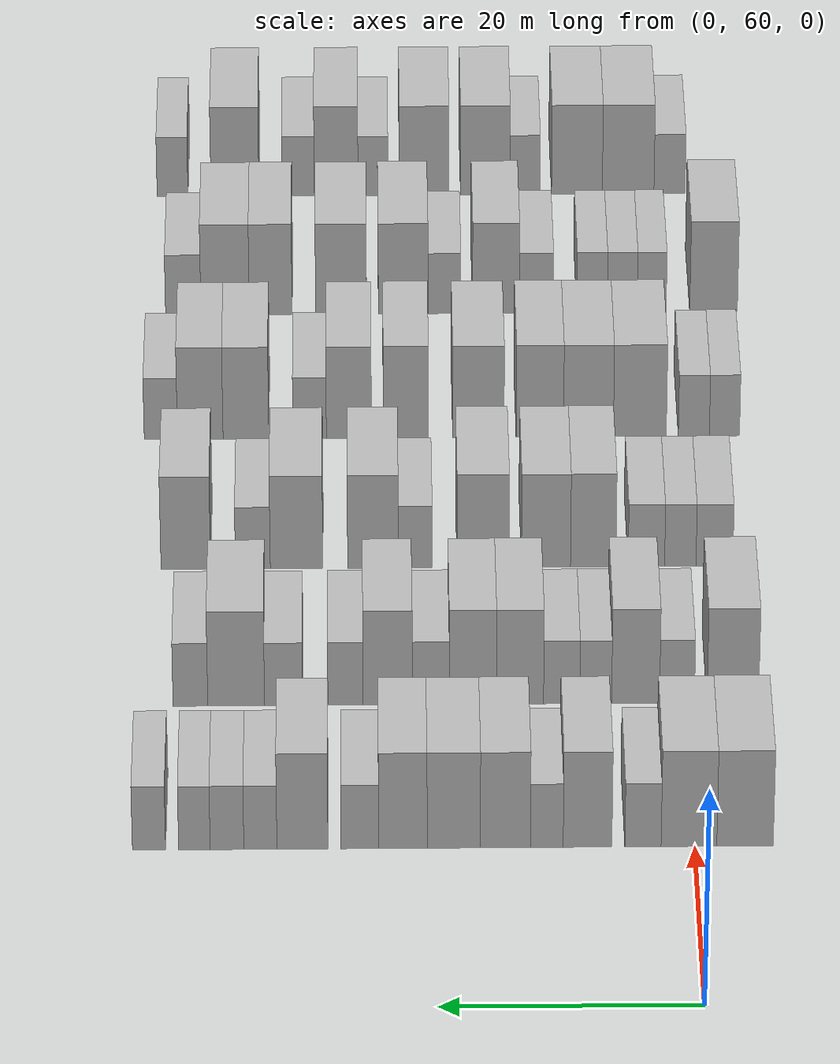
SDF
<sdf version="1.6">
 <world name="default">
  <model name="building_99">
   <static>1</static>
   <pose>25.0000 56.1814 0 0.000000 0.000000 0.000000</pose>
   <link name="link">
    <pose>0 0 4.50 0 0 0</pose>
    <collision name="collision"><geometry><box><size>10.0000 4.3345 9.0000</size></box></geometry></collision>
    <visual name="visual">
     <cast_shadows>0</cast_shadows>
     <geometry><box><size>10.0000 4.3345 9.0000</size></box></geometry>
     <material>
      <script>
       <uri>model://HANNAS_wall/materials/scripts</uri>
       <uri>model://HANNAS_wall/materials/textures</uri>
       <name>vrc/HANNAS_wall</name>
      </script>
     </material>
    </visual>
   </link>
  </model>
  <model name="building_100">
   <static>1</static>
   <pose>25.0000 60.4902 0 0.000000 0.000000 0.000000</pose>
   <link name="link">
    <pose>0 0 4.50 0 0 0</pose>
    <collision name="collision"><geometry><box><size>10.0000 4.2832 9.0000</size></box></geometry></collision>
    <visual name="visual">
     <cast_shadows>0</cast_shadows>
     <geometry><box><size>10.0000 4.2832 9.0000</size></box></geometry>
     <material>
      <script>
       <uri>model://HANNAS_wall/materials/scripts</uri>
       <uri>model://HANNAS_wall/materials/textures</uri>
       <name>vrc/HANNAS_wall</name>
      </script>
     </material>
    </visual>
   </link>
  </model>
  <model name="building_101">
   <static>1</static>
   <pose>25.0000 64.0233 0 0.000000 0.000000 0.000000</pose>
   <link name="link">
    <pose>0 0 3.00 0 0 0</pose>
    <collision name="collision"><geometry><box><size>10.0000 2.7829 6.0000</size></box></geometry></collision>
    <visual name="visual">
     <cast_shadows>0</cast_shadows>
     <geometry><box><size>10.0000 2.7829 6.0000</size></box></geometry>
     <material>
      <script>
       <uri>model://HANNAS_wall/materials/scripts</uri>
       <uri>model://HANNAS_wall/materials/textures</uri>
       <name>vrc/HANNAS_wall</name>
      </script>
     </material>
    </visual>
   </link>
  </model>
  <model name="building_102">
   <static>1</static>
   <pose>25.0000 68.2854 0 0.000000 0.000000 0.000000</pose>
   <link name="link">
    <pose>0 0 4.50 0 0 0</pose>
    <collision name="collision"><geometry><box><size>10.0000 3.7414 9.0000</size></box></geometry></collision>
    <visual name="visual">
     <cast_shadows>0</cast_shadows>
     <geometry><box><size>10.0000 3.7414 9.0000</size></box></geometry>
     <material>
      <script>
       <uri>model://HANNAS_wall/materials/scripts</uri>
       <uri>model://HANNAS_wall/materials/textures</uri>
       <name>vrc/HANNAS_wall</name>
      </script>
     </material>
    </visual>
   </link>
  </model>
  <model name="building_103">
   <static>1</static>
   <pose>25.0000 71.4149 0 0.000000 0.000000 0.000000</pose>
   <link name="link">
    <pose>0 0 3.00 0 0 0</pose>
    <collision name="collision"><geometry><box><size>10.0000 2.5176 6.0000</size></box></geometry></collision>
    <visual name="visual">
     <cast_shadows>0</cast_shadows>
     <geometry><box><size>10.0000 2.5176 6.0000</size></box></geometry>
     <material>
      <script>
       <uri>model://HANNAS_wall/materials/scripts</uri>
       <uri>model://HANNAS_wall/materials/textures</uri>
       <name>vrc/HANNAS_wall</name>
      </script>
     </material>
    </visual>
   </link>
  </model>
  <model name="building_104">
   <static>1</static>
   <pose>25.0000 74.5953 0 0.000000 0.000000 0.000000</pose>
   <link name="link">
    <pose>0 0 4.50 0 0 0</pose>
    <collision name="collision"><geometry><box><size>10.0000 3.8433 9.0000</size></box></geometry></collision>
    <visual name="visual">
     <cast_shadows>0</cast_shadows>
     <geometry><box><size>10.0000 3.8433 9.0000</size></box></geometry>
     <material>
      <script>
       <uri>model://HANNAS_wall/materials/scripts</uri>
       <uri>model://HANNAS_wall/materials/textures</uri>
       <name>vrc/HANNAS_wall</name>
      </script>
     </material>
    </visual>
   </link>
  </model>
  <model name="building_105">
   <static>1</static>
   <pose>25.0000 78.5623 0 0.000000 0.000000 0.000000</pose>
   <link name="link">
    <pose>0 0 4.50 0 0 0</pose>
    <collision name="collision"><geometry><box><size>10.0000 4.0907 9.0000</size></box></geometry></collision>
    <visual name="visual">
     <cast_shadows>0</cast_shadows>
     <geometry><box><size>10.0000 4.0907 9.0000</size></box></geometry>
     <material>
      <script>
       <uri>model://HANNAS_wall/materials/scripts</uri>
       <uri>model://HANNAS_wall/materials/textures</uri>
       <name>vrc/HANNAS_wall</name>
      </script>
     </material>
    </visual>
   </link>
  </model>
  <model name="building_106">
   <static>1</static>
   <pose>25.0000 82.4672 0 0.000000 0.000000 0.000000</pose>
   <link name="link">
    <pose>0 0 4.50 0 0 0</pose>
    <collision name="collision"><geometry><box><size>10.0000 3.7191 9.0000</size></box></geometry></collision>
    <visual name="visual">
     <cast_shadows>0</cast_shadows>
     <geometry><box><size>10.0000 3.7191 9.0000</size></box></geometry>
     <material>
      <script>
       <uri>model://HANNAS_wall/materials/scripts</uri>
       <uri>model://HANNAS_wall/materials/textures</uri>
       <name>vrc/HANNAS_wall</name>
      </script>
     </material>
    </visual>
   </link>
  </model>
  <model name="building_107">
   <static>1</static>
   <pose>25.0000 85.7744 0 0.000000 0.000000 0.000000</pose>
   <link name="link">
    <pose>0 0 3.00 0 0 0</pose>
    <collision name="collision"><geometry><box><size>10.0000 2.8953 6.0000</size></box></geometry></collision>
    <visual name="visual">
     <cast_shadows>0</cast_shadows>
     <geometry><box><size>10.0000 2.8953 6.0000</size></box></geometry>
     <material>
      <script>
       <uri>model://HANNAS_wall/materials/scripts</uri>
       <uri>model://HANNAS_wall/materials/textures</uri>
       <name>vrc/HANNAS_wall</name>
      </script>
     </material>
    </visual>
   </link>
  </model>
  <model name="building_108">
   <static>1</static>
   <pose>25.0000 90.1832 0 0.000000 0.000000 0.000000</pose>
   <link name="link">
    <pose>0 0 4.50 0 0 0</pose>
    <collision name="collision"><geometry><box><size>10.0000 3.9223 9.0000</size></box></geometry></collision>
    <visual name="visual">
     <cast_shadows>0</cast_shadows>
     <geometry><box><size>10.0000 3.9223 9.0000</size></box></geometry>
     <material>
      <script>
       <uri>model://HANNAS_wall/materials/scripts</uri>
       <uri>model://HANNAS_wall/materials/textures</uri>
       <name>vrc/HANNAS_wall</name>
      </script>
     </material>
    </visual>
   </link>
  </model>
  <model name="building_109">
   <static>1</static>
   <pose>25.0000 93.4155 0 0.000000 0.000000 0.000000</pose>
   <link name="link">
    <pose>0 0 3.00 0 0 0</pose>
    <collision name="collision"><geometry><box><size>10.0000 2.5422 6.0000</size></box></geometry></collision>
    <visual name="visual">
     <cast_shadows>0</cast_shadows>
     <geometry><box><size>10.0000 2.5422 6.0000</size></box></geometry>
     <material>
      <script>
       <uri>model://HANNAS_wall/materials/scripts</uri>
       <uri>model://HANNAS_wall/materials/textures</uri>
       <name>vrc/HANNAS_wall</name>
      </script>
     </material>
    </visual>
   </link>
  </model>
  <model name="building_110">
   <static>1</static>
   <pose>25.0000 95.9791 0 0.000000 0.000000 0.000000</pose>
   <link name="link">
    <pose>0 0 3.00 0 0 0</pose>
    <collision name="collision"><geometry><box><size>10.0000 2.5851 6.0000</size></box></geometry></collision>
    <visual name="visual">
     <cast_shadows>0</cast_shadows>
     <geometry><box><size>10.0000 2.5851 6.0000</size></box></geometry>
     <material>
      <script>
       <uri>model://HANNAS_wall/materials/scripts</uri>
       <uri>model://HANNAS_wall/materials/textures</uri>
       <name>vrc/HANNAS_wall</name>
      </script>
     </material>
    </visual>
   </link>
  </model>
  <model name="building_111">
   <static>1</static>
   <pose>25.0000 98.4808 0 0.000000 0.000000 0.000000</pose>
   <link name="link">
    <pose>0 0 3.00 0 0 0</pose>
    <collision name="collision"><geometry><box><size>10.0000 2.4184 6.0000</size></box></geometry></collision>
    <visual name="visual">
     <cast_shadows>0</cast_shadows>
     <geometry><box><size>10.0000 2.4184 6.0000</size></box></geometry>
     <material>
      <script>
       <uri>model://HANNAS_wall/materials/scripts</uri>
       <uri>model://HANNAS_wall/materials/textures</uri>
       <name>vrc/HANNAS_wall</name>
      </script>
     </material>
    </visual>
   </link>
  </model>
  <model name="building_112">
   <static>1</static>
   <pose>25.0000 101.9654 0 0.000000 0.000000 0.000000</pose>
   <link name="link">
    <pose>0 0 3.00 0 0 0</pose>
    <collision name="collision"><geometry><box><size>10.0000 2.5508 6.0000</size></box></geometry></collision>
    <visual name="visual">
     <cast_shadows>0</cast_shadows>
     <geometry><box><size>10.0000 2.5508 6.0000</size></box></geometry>
     <material>
      <script>
       <uri>model://HANNAS_wall/materials/scripts</uri>
       <uri>model://HANNAS_wall/materials/textures</uri>
       <name>vrc/HANNAS_wall</name>
      </script>
     </material>
    </visual>
   </link>
  </model>
  <model name="building_269">
   <static>1</static>
   <pose>44.0000 56.3316 0 0.000000 0.000000 0.000000</pose>
   <link name="link">
    <pose>0 0 4.50 0 0 0</pose>
    <collision name="collision"><geometry><box><size>10.0000 4.0592 9.0000</size></box></geometry></collision>
    <visual name="visual">
     <cast_shadows>0</cast_shadows>
     <geometry><box><size>10.0000 4.0592 9.0000</size></box></geometry>
     <material>
      <script>
       <uri>model://HANNAS_wall/materials/scripts</uri>
       <uri>model://HANNAS_wall/materials/textures</uri>
       <name>vrc/HANNAS_wall</name>
      </script>
     </material>
    </visual>
   </link>
  </model>
  <model name="building_270">
   <static>1</static>
   <pose>44.0000 60.7366 0 0.000000 0.000000 0.000000</pose>
   <link name="link">
    <pose>0 0 3.00 0 0 0</pose>
    <collision name="collision"><geometry><box><size>10.0000 2.7509 6.0000</size></box></geometry></collision>
    <visual name="visual">
     <cast_shadows>0</cast_shadows>
     <geometry><box><size>10.0000 2.7509 6.0000</size></box></geometry>
     <material>
      <script>
       <uri>model://HANNAS_wall/materials/scripts</uri>
       <uri>model://HANNAS_wall/materials/textures</uri>
       <name>vrc/HANNAS_wall</name>
      </script>
     </material>
    </visual>
   </link>
  </model>
  <model name="building_271">
   <static>1</static>
   <pose>44.0000 64.0002 0 0.000000 0.000000 0.000000</pose>
   <link name="link">
    <pose>0 0 4.50 0 0 0</pose>
    <collision name="collision"><geometry><box><size>10.0000 3.7762 9.0000</size></box></geometry></collision>
    <visual name="visual">
     <cast_shadows>0</cast_shadows>
     <geometry><box><size>10.0000 3.7762 9.0000</size></box></geometry>
     <material>
      <script>
       <uri>model://HANNAS_wall/materials/scripts</uri>
       <uri>model://HANNAS_wall/materials/textures</uri>
       <name>vrc/HANNAS_wall</name>
      </script>
     </material>
    </visual>
   </link>
  </model>
  <model name="building_272">
   <static>1</static>
   <pose>44.0000 67.1440 0 0.000000 0.000000 0.000000</pose>
   <link name="link">
    <pose>0 0 3.00 0 0 0</pose>
    <collision name="collision"><geometry><box><size>10.0000 2.5114 6.0000</size></box></geometry></collision>
    <visual name="visual">
     <cast_shadows>0</cast_shadows>
     <geometry><box><size>10.0000 2.5114 6.0000</size></box></geometry>
     <material>
      <script>
       <uri>model://HANNAS_wall/materials/scripts</uri>
       <uri>model://HANNAS_wall/materials/textures</uri>
       <name>vrc/HANNAS_wall</name>
      </script>
     </material>
    </visual>
   </link>
  </model>
  <model name="building_273">
   <static>1</static>
   <pose>44.0000 69.8264 0 0.000000 0.000000 0.000000</pose>
   <link name="link">
    <pose>0 0 3.00 0 0 0</pose>
    <collision name="collision"><geometry><box><size>10.0000 2.8534 6.0000</size></box></geometry></collision>
    <visual name="visual">
     <cast_shadows>0</cast_shadows>
     <geometry><box><size>10.0000 2.8534 6.0000</size></box></geometry>
     <material>
      <script>
       <uri>model://HANNAS_wall/materials/scripts</uri>
       <uri>model://HANNAS_wall/materials/textures</uri>
       <name>vrc/HANNAS_wall</name>
      </script>
     </material>
    </visual>
   </link>
  </model>
  <model name="building_274">
   <static>1</static>
   <pose>44.0000 73.1117 0 0.000000 0.000000 0.000000</pose>
   <link name="link">
    <pose>0 0 4.50 0 0 0</pose>
    <collision name="collision"><geometry><box><size>10.0000 3.7173 9.0000</size></box></geometry></collision>
    <visual name="visual">
     <cast_shadows>0</cast_shadows>
     <geometry><box><size>10.0000 3.7173 9.0000</size></box></geometry>
     <material>
      <script>
       <uri>model://HANNAS_wall/materials/scripts</uri>
       <uri>model://HANNAS_wall/materials/textures</uri>
       <name>vrc/HANNAS_wall</name>
      </script>
     </material>
    </visual>
   </link>
  </model>
  <model name="building_275">
   <static>1</static>
   <pose>44.0000 76.8244 0 0.000000 0.000000 0.000000</pose>
   <link name="link">
    <pose>0 0 4.50 0 0 0</pose>
    <collision name="collision"><geometry><box><size>10.0000 3.7081 9.0000</size></box></geometry></collision>
    <visual name="visual">
     <cast_shadows>0</cast_shadows>
     <geometry><box><size>10.0000 3.7081 9.0000</size></box></geometry>
     <material>
      <script>
       <uri>model://HANNAS_wall/materials/scripts</uri>
       <uri>model://HANNAS_wall/materials/textures</uri>
       <name>vrc/HANNAS_wall</name>
      </script>
     </material>
    </visual>
   </link>
  </model>
  <model name="building_276">
   <static>1</static>
   <pose>44.0000 80.1343 0 0.000000 0.000000 0.000000</pose>
   <link name="link">
    <pose>0 0 3.00 0 0 0</pose>
    <collision name="collision"><geometry><box><size>10.0000 2.9115 6.0000</size></box></geometry></collision>
    <visual name="visual">
     <cast_shadows>0</cast_shadows>
     <geometry><box><size>10.0000 2.9115 6.0000</size></box></geometry>
     <material>
      <script>
       <uri>model://HANNAS_wall/materials/scripts</uri>
       <uri>model://HANNAS_wall/materials/textures</uri>
       <name>vrc/HANNAS_wall</name>
      </script>
     </material>
    </visual>
   </link>
  </model>
  <model name="building_277">
   <static>1</static>
   <pose>44.0000 83.5265 0 0.000000 0.000000 0.000000</pose>
   <link name="link">
    <pose>0 0 4.50 0 0 0</pose>
    <collision name="collision"><geometry><box><size>10.0000 3.8730 9.0000</size></box></geometry></collision>
    <visual name="visual">
     <cast_shadows>0</cast_shadows>
     <geometry><box><size>10.0000 3.8730 9.0000</size></box></geometry>
     <material>
      <script>
       <uri>model://HANNAS_wall/materials/scripts</uri>
       <uri>model://HANNAS_wall/materials/textures</uri>
       <name>vrc/HANNAS_wall</name>
      </script>
     </material>
    </visual>
   </link>
  </model>
  <model name="building_278">
   <static>1</static>
   <pose>44.0000 86.8495 0 0.000000 0.000000 0.000000</pose>
   <link name="link">
    <pose>0 0 3.00 0 0 0</pose>
    <collision name="collision"><geometry><box><size>10.0000 2.7729 6.0000</size></box></geometry></collision>
    <visual name="visual">
     <cast_shadows>0</cast_shadows>
     <geometry><box><size>10.0000 2.7729 6.0000</size></box></geometry>
     <material>
      <script>
       <uri>model://HANNAS_wall/materials/scripts</uri>
       <uri>model://HANNAS_wall/materials/textures</uri>
       <name>vrc/HANNAS_wall</name>
      </script>
     </material>
    </visual>
   </link>
  </model>
  <model name="building_279">
   <static>1</static>
   <pose>44.0000 91.7321 0 0.000000 0.000000 0.000000</pose>
   <link name="link">
    <pose>0 0 3.00 0 0 0</pose>
    <collision name="collision"><geometry><box><size>10.0000 2.9924 6.0000</size></box></geometry></collision>
    <visual name="visual">
     <cast_shadows>0</cast_shadows>
     <geometry><box><size>10.0000 2.9924 6.0000</size></box></geometry>
     <material>
      <script>
       <uri>model://HANNAS_wall/materials/scripts</uri>
       <uri>model://HANNAS_wall/materials/textures</uri>
       <name>vrc/HANNAS_wall</name>
      </script>
     </material>
    </visual>
   </link>
  </model>
  <model name="building_280">
   <static>1</static>
   <pose>44.0000 95.4655 0 0.000000 0.000000 0.000000</pose>
   <link name="link">
    <pose>0 0 4.50 0 0 0</pose>
    <collision name="collision"><geometry><box><size>10.0000 4.4745 9.0000</size></box></geometry></collision>
    <visual name="visual">
     <cast_shadows>0</cast_shadows>
     <geometry><box><size>10.0000 4.4745 9.0000</size></box></geometry>
     <material>
      <script>
       <uri>model://HANNAS_wall/materials/scripts</uri>
       <uri>model://HANNAS_wall/materials/textures</uri>
       <name>vrc/HANNAS_wall</name>
      </script>
     </material>
    </visual>
   </link>
  </model>
  <model name="building_281">
   <static>1</static>
   <pose>44.0000 99.0698 0 0.000000 0.000000 0.000000</pose>
   <link name="link">
    <pose>0 0 3.00 0 0 0</pose>
    <collision name="collision"><geometry><box><size>10.0000 2.7340 6.0000</size></box></geometry></collision>
    <visual name="visual">
     <cast_shadows>0</cast_shadows>
     <geometry><box><size>10.0000 2.7340 6.0000</size></box></geometry>
     <material>
      <script>
       <uri>model://HANNAS_wall/materials/scripts</uri>
       <uri>model://HANNAS_wall/materials/textures</uri>
       <name>vrc/HANNAS_wall</name>
      </script>
     </material>
    </visual>
   </link>
  </model>
  <model name="building_445">
   <static>1</static>
   <pose>63.0000 57.0361 0 0.000000 0.000000 0.000000</pose>
   <link name="link">
    <pose>0 0 3.00 0 0 0</pose>
    <collision name="collision"><geometry><box><size>10.0000 2.9749 6.0000</size></box></geometry></collision>
    <visual name="visual">
     <cast_shadows>0</cast_shadows>
     <geometry><box><size>10.0000 2.9749 6.0000</size></box></geometry>
     <material>
      <script>
       <uri>model://HANNAS_wall/materials/scripts</uri>
       <uri>model://HANNAS_wall/materials/textures</uri>
       <name>vrc/HANNAS_wall</name>
      </script>
     </material>
    </visual>
   </link>
  </model>
  <model name="building_446">
   <static>1</static>
   <pose>63.0000 59.7923 0 0.000000 0.000000 0.000000</pose>
   <link name="link">
    <pose>0 0 3.00 0 0 0</pose>
    <collision name="collision"><geometry><box><size>10.0000 2.5376 6.0000</size></box></geometry></collision>
    <visual name="visual">
     <cast_shadows>0</cast_shadows>
     <geometry><box><size>10.0000 2.5376 6.0000</size></box></geometry>
     <material>
      <script>
       <uri>model://HANNAS_wall/materials/scripts</uri>
       <uri>model://HANNAS_wall/materials/textures</uri>
       <name>vrc/HANNAS_wall</name>
      </script>
     </material>
    </visual>
   </link>
  </model>
  <model name="building_447">
   <static>1</static>
   <pose>63.0000 62.5321 0 0.000000 0.000000 0.000000</pose>
   <link name="link">
    <pose>0 0 3.00 0 0 0</pose>
    <collision name="collision"><geometry><box><size>10.0000 2.9419 6.0000</size></box></geometry></collision>
    <visual name="visual">
     <cast_shadows>0</cast_shadows>
     <geometry><box><size>10.0000 2.9419 6.0000</size></box></geometry>
     <material>
      <script>
       <uri>model://HANNAS_wall/materials/scripts</uri>
       <uri>model://HANNAS_wall/materials/textures</uri>
       <name>vrc/HANNAS_wall</name>
      </script>
     </material>
    </visual>
   </link>
  </model>
  <model name="building_448">
   <static>1</static>
   <pose>63.0000 66.8336 0 0.000000 0.000000 0.000000</pose>
   <link name="link">
    <pose>0 0 4.50 0 0 0</pose>
    <collision name="collision"><geometry><box><size>10.0000 3.6611 9.0000</size></box></geometry></collision>
    <visual name="visual">
     <cast_shadows>0</cast_shadows>
     <geometry><box><size>10.0000 3.6611 9.0000</size></box></geometry>
     <material>
      <script>
       <uri>model://HANNAS_wall/materials/scripts</uri>
       <uri>model://HANNAS_wall/materials/textures</uri>
       <name>vrc/HANNAS_wall</name>
      </script>
     </material>
    </visual>
   </link>
  </model>
  <model name="building_449">
   <static>1</static>
   <pose>63.0000 70.6448 0 0.000000 0.000000 0.000000</pose>
   <link name="link">
    <pose>0 0 4.50 0 0 0</pose>
    <collision name="collision"><geometry><box><size>10.0000 3.9614 9.0000</size></box></geometry></collision>
    <visual name="visual">
     <cast_shadows>0</cast_shadows>
     <geometry><box><size>10.0000 3.9614 9.0000</size></box></geometry>
     <material>
      <script>
       <uri>model://HANNAS_wall/materials/scripts</uri>
       <uri>model://HANNAS_wall/materials/textures</uri>
       <name>vrc/HANNAS_wall</name>
      </script>
     </material>
    </visual>
   </link>
  </model>
  <model name="building_450">
   <static>1</static>
   <pose>63.0000 75.7273 0 0.000000 0.000000 0.000000</pose>
   <link name="link">
    <pose>0 0 4.50 0 0 0</pose>
    <collision name="collision"><geometry><box><size>10.0000 4.2034 9.0000</size></box></geometry></collision>
    <visual name="visual">
     <cast_shadows>0</cast_shadows>
     <geometry><box><size>10.0000 4.2034 9.0000</size></box></geometry>
     <material>
      <script>
       <uri>model://HANNAS_wall/materials/scripts</uri>
       <uri>model://HANNAS_wall/materials/textures</uri>
       <name>vrc/HANNAS_wall</name>
      </script>
     </material>
    </visual>
   </link>
  </model>
  <model name="building_451">
   <static>1</static>
   <pose>63.0000 81.1957 0 0.000000 0.000000 0.000000</pose>
   <link name="link">
    <pose>0 0 3.00 0 0 0</pose>
    <collision name="collision"><geometry><box><size>10.0000 2.7335 6.0000</size></box></geometry></collision>
    <visual name="visual">
     <cast_shadows>0</cast_shadows>
     <geometry><box><size>10.0000 2.7335 6.0000</size></box></geometry>
     <material>
      <script>
       <uri>model://HANNAS_wall/materials/scripts</uri>
       <uri>model://HANNAS_wall/materials/textures</uri>
       <name>vrc/HANNAS_wall</name>
      </script>
     </material>
    </visual>
   </link>
  </model>
  <model name="building_452">
   <static>1</static>
   <pose>63.0000 84.6086 0 0.000000 0.000000 0.000000</pose>
   <link name="link">
    <pose>0 0 4.50 0 0 0</pose>
    <collision name="collision"><geometry><box><size>10.0000 4.0922 9.0000</size></box></geometry></collision>
    <visual name="visual">
     <cast_shadows>0</cast_shadows>
     <geometry><box><size>10.0000 4.0922 9.0000</size></box></geometry>
     <material>
      <script>
       <uri>model://HANNAS_wall/materials/scripts</uri>
       <uri>model://HANNAS_wall/materials/textures</uri>
       <name>vrc/HANNAS_wall</name>
      </script>
     </material>
    </visual>
   </link>
  </model>
  <model name="building_453">
   <static>1</static>
   <pose>63.0000 90.7799 0 0.000000 0.000000 0.000000</pose>
   <link name="link">
    <pose>0 0 4.50 0 0 0</pose>
    <collision name="collision"><geometry><box><size>10.0000 4.2504 9.0000</size></box></geometry></collision>
    <visual name="visual">
     <cast_shadows>0</cast_shadows>
     <geometry><box><size>10.0000 4.2504 9.0000</size></box></geometry>
     <material>
      <script>
       <uri>model://HANNAS_wall/materials/scripts</uri>
       <uri>model://HANNAS_wall/materials/textures</uri>
       <name>vrc/HANNAS_wall</name>
      </script>
     </material>
    </visual>
   </link>
  </model>
  <model name="building_454">
   <static>1</static>
   <pose>63.0000 94.3123 0 0.000000 0.000000 0.000000</pose>
   <link name="link">
    <pose>0 0 3.00 0 0 0</pose>
    <collision name="collision"><geometry><box><size>10.0000 2.8144 6.0000</size></box></geometry></collision>
    <visual name="visual">
     <cast_shadows>0</cast_shadows>
     <geometry><box><size>10.0000 2.8144 6.0000</size></box></geometry>
     <material>
      <script>
       <uri>model://HANNAS_wall/materials/scripts</uri>
       <uri>model://HANNAS_wall/materials/textures</uri>
       <name>vrc/HANNAS_wall</name>
      </script>
     </material>
    </visual>
   </link>
  </model>
  <model name="building_455">
   <static>1</static>
   <pose>63.0000 99.7206 0 0.000000 0.000000 0.000000</pose>
   <link name="link">
    <pose>0 0 4.50 0 0 0</pose>
    <collision name="collision"><geometry><box><size>10.0000 4.0022 9.0000</size></box></geometry></collision>
    <visual name="visual">
     <cast_shadows>0</cast_shadows>
     <geometry><box><size>10.0000 4.0022 9.0000</size></box></geometry>
     <material>
      <script>
       <uri>model://HANNAS_wall/materials/scripts</uri>
       <uri>model://HANNAS_wall/materials/textures</uri>
       <name>vrc/HANNAS_wall</name>
      </script>
     </material>
    </visual>
   </link>
  </model>
  <model name="building_609">
   <static>1</static>
   <pose>82.0000 55.4553 0 0.000000 0.000000 0.000000</pose>
   <link name="link">
    <pose>0 0 3.00 0 0 0</pose>
    <collision name="collision"><geometry><box><size>10.0000 2.4964 6.0000</size></box></geometry></collision>
    <visual name="visual">
     <cast_shadows>0</cast_shadows>
     <geometry><box><size>10.0000 2.4964 6.0000</size></box></geometry>
     <material>
      <script>
       <uri>model://HANNAS_wall/materials/scripts</uri>
       <uri>model://HANNAS_wall/materials/textures</uri>
       <name>vrc/HANNAS_wall</name>
      </script>
     </material>
    </visual>
   </link>
  </model>
  <model name="building_610">
   <static>1</static>
   <pose>82.0000 57.9870 0 0.000000 0.000000 0.000000</pose>
   <link name="link">
    <pose>0 0 3.00 0 0 0</pose>
    <collision name="collision"><geometry><box><size>10.0000 2.5672 6.0000</size></box></geometry></collision>
    <visual name="visual">
     <cast_shadows>0</cast_shadows>
     <geometry><box><size>10.0000 2.5672 6.0000</size></box></geometry>
     <material>
      <script>
       <uri>model://HANNAS_wall/materials/scripts</uri>
       <uri>model://HANNAS_wall/materials/textures</uri>
       <name>vrc/HANNAS_wall</name>
      </script>
     </material>
    </visual>
   </link>
  </model>
  <model name="building_611">
   <static>1</static>
   <pose>82.0000 62.4602 0 0.000000 0.000000 0.000000</pose>
   <link name="link">
    <pose>0 0 4.50 0 0 0</pose>
    <collision name="collision"><geometry><box><size>10.0000 4.3792 9.0000</size></box></geometry></collision>
    <visual name="visual">
     <cast_shadows>0</cast_shadows>
     <geometry><box><size>10.0000 4.3792 9.0000</size></box></geometry>
     <material>
      <script>
       <uri>model://HANNAS_wall/materials/scripts</uri>
       <uri>model://HANNAS_wall/materials/textures</uri>
       <name>vrc/HANNAS_wall</name>
      </script>
     </material>
    </visual>
   </link>
  </model>
  <model name="building_612">
   <static>1</static>
   <pose>82.0000 66.7138 0 0.000000 0.000000 0.000000</pose>
   <link name="link">
    <pose>0 0 4.50 0 0 0</pose>
    <collision name="collision"><geometry><box><size>10.0000 4.1278 9.0000</size></box></geometry></collision>
    <visual name="visual">
     <cast_shadows>0</cast_shadows>
     <geometry><box><size>10.0000 4.1278 9.0000</size></box></geometry>
     <material>
      <script>
       <uri>model://HANNAS_wall/materials/scripts</uri>
       <uri>model://HANNAS_wall/materials/textures</uri>
       <name>vrc/HANNAS_wall</name>
      </script>
     </material>
    </visual>
   </link>
  </model>
  <model name="building_613">
   <static>1</static>
   <pose>82.0000 70.7361 0 0.000000 0.000000 0.000000</pose>
   <link name="link">
    <pose>0 0 4.50 0 0 0</pose>
    <collision name="collision"><geometry><box><size>10.0000 3.9168 9.0000</size></box></geometry></collision>
    <visual name="visual">
     <cast_shadows>0</cast_shadows>
     <geometry><box><size>10.0000 3.9168 9.0000</size></box></geometry>
     <material>
      <script>
       <uri>model://HANNAS_wall/materials/scripts</uri>
       <uri>model://HANNAS_wall/materials/textures</uri>
       <name>vrc/HANNAS_wall</name>
      </script>
     </material>
    </visual>
   </link>
  </model>
  <model name="building_614">
   <static>1</static>
   <pose>82.0000 75.8199 0 0.000000 0.000000 0.000000</pose>
   <link name="link">
    <pose>0 0 4.50 0 0 0</pose>
    <collision name="collision"><geometry><box><size>10.0000 4.2508 9.0000</size></box></geometry></collision>
    <visual name="visual">
     <cast_shadows>0</cast_shadows>
     <geometry><box><size>10.0000 4.2508 9.0000</size></box></geometry>
     <material>
      <script>
       <uri>model://HANNAS_wall/materials/scripts</uri>
       <uri>model://HANNAS_wall/materials/textures</uri>
       <name>vrc/HANNAS_wall</name>
      </script>
     </material>
    </visual>
   </link>
  </model>
  <model name="building_615">
   <static>1</static>
   <pose>82.0000 81.8036 0 0.000000 0.000000 0.000000</pose>
   <link name="link">
    <pose>0 0 4.50 0 0 0</pose>
    <collision name="collision"><geometry><box><size>10.0000 3.7166 9.0000</size></box></geometry></collision>
    <visual name="visual">
     <cast_shadows>0</cast_shadows>
     <geometry><box><size>10.0000 3.7166 9.0000</size></box></geometry>
     <material>
      <script>
       <uri>model://HANNAS_wall/materials/scripts</uri>
       <uri>model://HANNAS_wall/materials/textures</uri>
       <name>vrc/HANNAS_wall</name>
      </script>
     </material>
    </visual>
   </link>
  </model>
  <model name="building_616">
   <static>1</static>
   <pose>82.0000 86.5274 0 0.000000 0.000000 0.000000</pose>
   <link name="link">
    <pose>0 0 4.50 0 0 0</pose>
    <collision name="collision"><geometry><box><size>10.0000 3.7309 9.0000</size></box></geometry></collision>
    <visual name="visual">
     <cast_shadows>0</cast_shadows>
     <geometry><box><size>10.0000 3.7309 9.0000</size></box></geometry>
     <material>
      <script>
       <uri>model://HANNAS_wall/materials/scripts</uri>
       <uri>model://HANNAS_wall/materials/textures</uri>
       <name>vrc/HANNAS_wall</name>
      </script>
     </material>
    </visual>
   </link>
  </model>
  <model name="building_617">
   <static>1</static>
   <pose>82.0000 89.7713 0 0.000000 0.000000 0.000000</pose>
   <link name="link">
    <pose>0 0 3.00 0 0 0</pose>
    <collision name="collision"><geometry><box><size>10.0000 2.7569 6.0000</size></box></geometry></collision>
    <visual name="visual">
     <cast_shadows>0</cast_shadows>
     <geometry><box><size>10.0000 2.7569 6.0000</size></box></geometry>
     <material>
      <script>
       <uri>model://HANNAS_wall/materials/scripts</uri>
       <uri>model://HANNAS_wall/materials/textures</uri>
       <name>vrc/HANNAS_wall</name>
      </script>
     </material>
    </visual>
   </link>
  </model>
  <model name="building_618">
   <static>1</static>
   <pose>82.0000 95.0429 0 0.000000 0.000000 0.000000</pose>
   <link name="link">
    <pose>0 0 4.50 0 0 0</pose>
    <collision name="collision"><geometry><box><size>10.0000 3.7863 9.0000</size></box></geometry></collision>
    <visual name="visual">
     <cast_shadows>0</cast_shadows>
     <geometry><box><size>10.0000 3.7863 9.0000</size></box></geometry>
     <material>
      <script>
       <uri>model://HANNAS_wall/materials/scripts</uri>
       <uri>model://HANNAS_wall/materials/textures</uri>
       <name>vrc/HANNAS_wall</name>
      </script>
     </material>
    </visual>
   </link>
  </model>
  <model name="building_619">
   <static>1</static>
   <pose>82.0000 98.8198 0 0.000000 0.000000 0.000000</pose>
   <link name="link">
    <pose>0 0 4.50 0 0 0</pose>
    <collision name="collision"><geometry><box><size>10.0000 3.7676 9.0000</size></box></geometry></collision>
    <visual name="visual">
     <cast_shadows>0</cast_shadows>
     <geometry><box><size>10.0000 3.7676 9.0000</size></box></geometry>
     <material>
      <script>
       <uri>model://HANNAS_wall/materials/scripts</uri>
       <uri>model://HANNAS_wall/materials/textures</uri>
       <name>vrc/HANNAS_wall</name>
      </script>
     </material>
    </visual>
   </link>
  </model>
  <model name="building_620">
   <static>1</static>
   <pose>82.0000 102.0773 0 0.000000 0.000000 0.000000</pose>
   <link name="link">
    <pose>0 0 3.00 0 0 0</pose>
    <collision name="collision"><geometry><box><size>10.0000 2.7474 6.0000</size></box></geometry></collision>
    <visual name="visual">
     <cast_shadows>0</cast_shadows>
     <geometry><box><size>10.0000 2.7474 6.0000</size></box></geometry>
     <material>
      <script>
       <uri>model://HANNAS_wall/materials/scripts</uri>
       <uri>model://HANNAS_wall/materials/textures</uri>
       <name>vrc/HANNAS_wall</name>
      </script>
     </material>
    </visual>
   </link>
  </model>
  <model name="building_763">
   <static>1</static>
   <pose>101.0000 55.6077 0 0.000000 0.000000 0.000000</pose>
   <link name="link">
    <pose>0 0 4.50 0 0 0</pose>
    <collision name="collision"><geometry><box><size>10.0000 4.0353 9.0000</size></box></geometry></collision>
    <visual name="visual">
     <cast_shadows>0</cast_shadows>
     <geometry><box><size>10.0000 4.0353 9.0000</size></box></geometry>
     <material>
      <script>
       <uri>model://HANNAS_wall/materials/scripts</uri>
       <uri>model://HANNAS_wall/materials/textures</uri>
       <name>vrc/HANNAS_wall</name>
      </script>
     </material>
    </visual>
   </link>
  </model>
  <model name="building_764">
   <static>1</static>
   <pose>101.0000 60.8532 0 0.000000 0.000000 0.000000</pose>
   <link name="link">
    <pose>0 0 3.00 0 0 0</pose>
    <collision name="collision"><geometry><box><size>10.0000 2.4557 6.0000</size></box></geometry></collision>
    <visual name="visual">
     <cast_shadows>0</cast_shadows>
     <geometry><box><size>10.0000 2.4557 6.0000</size></box></geometry>
     <material>
      <script>
       <uri>model://HANNAS_wall/materials/scripts</uri>
       <uri>model://HANNAS_wall/materials/textures</uri>
       <name>vrc/HANNAS_wall</name>
      </script>
     </material>
    </visual>
   </link>
  </model>
  <model name="building_765">
   <static>1</static>
   <pose>101.0000 63.3536 0 0.000000 0.000000 0.000000</pose>
   <link name="link">
    <pose>0 0 3.00 0 0 0</pose>
    <collision name="collision"><geometry><box><size>10.0000 2.5451 6.0000</size></box></geometry></collision>
    <visual name="visual">
     <cast_shadows>0</cast_shadows>
     <geometry><box><size>10.0000 2.5451 6.0000</size></box></geometry>
     <material>
      <script>
       <uri>model://HANNAS_wall/materials/scripts</uri>
       <uri>model://HANNAS_wall/materials/textures</uri>
       <name>vrc/HANNAS_wall</name>
      </script>
     </material>
    </visual>
   </link>
  </model>
  <model name="building_766">
   <static>1</static>
   <pose>101.0000 65.9097 0 0.000000 0.000000 0.000000</pose>
   <link name="link">
    <pose>0 0 3.00 0 0 0</pose>
    <collision name="collision"><geometry><box><size>10.0000 2.5670 6.0000</size></box></geometry></collision>
    <visual name="visual">
     <cast_shadows>0</cast_shadows>
     <geometry><box><size>10.0000 2.5670 6.0000</size></box></geometry>
     <material>
      <script>
       <uri>model://HANNAS_wall/materials/scripts</uri>
       <uri>model://HANNAS_wall/materials/textures</uri>
       <name>vrc/HANNAS_wall</name>
      </script>
     </material>
    </visual>
   </link>
  </model>
  <model name="building_767">
   <static>1</static>
   <pose>101.0000 70.6346 0 0.000000 0.000000 0.000000</pose>
   <link name="link">
    <pose>0 0 3.00 0 0 0</pose>
    <collision name="collision"><geometry><box><size>10.0000 2.8828 6.0000</size></box></geometry></collision>
    <visual name="visual">
     <cast_shadows>0</cast_shadows>
     <geometry><box><size>10.0000 2.8828 6.0000</size></box></geometry>
     <material>
      <script>
       <uri>model://HANNAS_wall/materials/scripts</uri>
       <uri>model://HANNAS_wall/materials/textures</uri>
       <name>vrc/HANNAS_wall</name>
      </script>
     </material>
    </visual>
   </link>
  </model>
  <model name="building_768">
   <static>1</static>
   <pose>101.0000 74.0491 0 0.000000 0.000000 0.000000</pose>
   <link name="link">
    <pose>0 0 4.50 0 0 0</pose>
    <collision name="collision"><geometry><box><size>10.0000 3.9462 9.0000</size></box></geometry></collision>
    <visual name="visual">
     <cast_shadows>0</cast_shadows>
     <geometry><box><size>10.0000 3.9462 9.0000</size></box></geometry>
     <material>
      <script>
       <uri>model://HANNAS_wall/materials/scripts</uri>
       <uri>model://HANNAS_wall/materials/textures</uri>
       <name>vrc/HANNAS_wall</name>
      </script>
     </material>
    </visual>
   </link>
  </model>
  <model name="building_769">
   <static>1</static>
   <pose>101.0000 78.4106 0 0.000000 0.000000 0.000000</pose>
   <link name="link">
    <pose>0 0 3.00 0 0 0</pose>
    <collision name="collision"><geometry><box><size>10.0000 2.7768 6.0000</size></box></geometry></collision>
    <visual name="visual">
     <cast_shadows>0</cast_shadows>
     <geometry><box><size>10.0000 2.7768 6.0000</size></box></geometry>
     <material>
      <script>
       <uri>model://HANNAS_wall/materials/scripts</uri>
       <uri>model://HANNAS_wall/materials/textures</uri>
       <name>vrc/HANNAS_wall</name>
      </script>
     </material>
    </visual>
   </link>
  </model>
  <model name="building_770">
   <static>1</static>
   <pose>101.0000 81.9002 0 0.000000 0.000000 0.000000</pose>
   <link name="link">
    <pose>0 0 4.50 0 0 0</pose>
    <collision name="collision"><geometry><box><size>10.0000 4.2024 9.0000</size></box></geometry></collision>
    <visual name="visual">
     <cast_shadows>0</cast_shadows>
     <geometry><box><size>10.0000 4.2024 9.0000</size></box></geometry>
     <material>
      <script>
       <uri>model://HANNAS_wall/materials/scripts</uri>
       <uri>model://HANNAS_wall/materials/textures</uri>
       <name>vrc/HANNAS_wall</name>
      </script>
     </material>
    </visual>
   </link>
  </model>
  <model name="building_771">
   <static>1</static>
   <pose>101.0000 87.1535 0 0.000000 0.000000 0.000000</pose>
   <link name="link">
    <pose>0 0 4.50 0 0 0</pose>
    <collision name="collision"><geometry><box><size>10.0000 4.3043 9.0000</size></box></geometry></collision>
    <visual name="visual">
     <cast_shadows>0</cast_shadows>
     <geometry><box><size>10.0000 4.3043 9.0000</size></box></geometry>
     <material>
      <script>
       <uri>model://HANNAS_wall/materials/scripts</uri>
       <uri>model://HANNAS_wall/materials/textures</uri>
       <name>vrc/HANNAS_wall</name>
      </script>
     </material>
    </visual>
   </link>
  </model>
  <model name="building_772">
   <static>1</static>
   <pose>101.0000 93.1149 0 0.000000 0.000000 0.000000</pose>
   <link name="link">
    <pose>0 0 4.50 0 0 0</pose>
    <collision name="collision"><geometry><box><size>10.0000 3.6184 9.0000</size></box></geometry></collision>
    <visual name="visual">
     <cast_shadows>0</cast_shadows>
     <geometry><box><size>10.0000 3.6184 9.0000</size></box></geometry>
     <material>
      <script>
       <uri>model://HANNAS_wall/materials/scripts</uri>
       <uri>model://HANNAS_wall/materials/textures</uri>
       <name>vrc/HANNAS_wall</name>
      </script>
     </material>
    </visual>
   </link>
  </model>
  <model name="building_773">
   <static>1</static>
   <pose>101.0000 96.9760 0 0.000000 0.000000 0.000000</pose>
   <link name="link">
    <pose>0 0 4.50 0 0 0</pose>
    <collision name="collision"><geometry><box><size>10.0000 4.1038 9.0000</size></box></geometry></collision>
    <visual name="visual">
     <cast_shadows>0</cast_shadows>
     <geometry><box><size>10.0000 4.1038 9.0000</size></box></geometry>
     <material>
      <script>
       <uri>model://HANNAS_wall/materials/scripts</uri>
       <uri>model://HANNAS_wall/materials/textures</uri>
       <name>vrc/HANNAS_wall</name>
      </script>
     </material>
    </visual>
   </link>
  </model>
  <model name="building_774">
   <static>1</static>
   <pose>101.0000 100.5229 0 0.000000 0.000000 0.000000</pose>
   <link name="link">
    <pose>0 0 3.00 0 0 0</pose>
    <collision name="collision"><geometry><box><size>10.0000 2.9901 6.0000</size></box></geometry></collision>
    <visual name="visual">
     <cast_shadows>0</cast_shadows>
     <geometry><box><size>10.0000 2.9901 6.0000</size></box></geometry>
     <material>
      <script>
       <uri>model://HANNAS_wall/materials/scripts</uri>
       <uri>model://HANNAS_wall/materials/textures</uri>
       <name>vrc/HANNAS_wall</name>
      </script>
     </material>
    </visual>
   </link>
  </model>
  <model name="building_945">
   <static>1</static>
   <pose>120.0000 58.6784 0 0.000000 0.000000 0.000000</pose>
   <link name="link">
    <pose>0 0 3.00 0 0 0</pose>
    <collision name="collision"><geometry><box><size>10.0000 2.7037 6.0000</size></box></geometry></collision>
    <visual name="visual">
     <cast_shadows>0</cast_shadows>
     <geometry><box><size>10.0000 2.7037 6.0000</size></box></geometry>
     <material>
      <script>
       <uri>model://HANNAS_wall/materials/scripts</uri>
       <uri>model://HANNAS_wall/materials/textures</uri>
       <name>vrc/HANNAS_wall</name>
      </script>
     </material>
    </visual>
   </link>
  </model>
  <model name="building_946">
   <static>1</static>
   <pose>120.0000 62.2690 0 0.000000 0.000000 0.000000</pose>
   <link name="link">
    <pose>0 0 4.50 0 0 0</pose>
    <collision name="collision"><geometry><box><size>10.0000 4.4777 9.0000</size></box></geometry></collision>
    <visual name="visual">
     <cast_shadows>0</cast_shadows>
     <geometry><box><size>10.0000 4.4777 9.0000</size></box></geometry>
     <material>
      <script>
       <uri>model://HANNAS_wall/materials/scripts</uri>
       <uri>model://HANNAS_wall/materials/textures</uri>
       <name>vrc/HANNAS_wall</name>
      </script>
     </material>
    </visual>
   </link>
  </model>
  <model name="building_947">
   <static>1</static>
   <pose>120.0000 66.7084 0 0.000000 0.000000 0.000000</pose>
   <link name="link">
    <pose>0 0 4.50 0 0 0</pose>
    <collision name="collision"><geometry><box><size>10.0000 4.4010 9.0000</size></box></geometry></collision>
    <visual name="visual">
     <cast_shadows>0</cast_shadows>
     <geometry><box><size>10.0000 4.4010 9.0000</size></box></geometry>
     <material>
      <script>
       <uri>model://HANNAS_wall/materials/scripts</uri>
       <uri>model://HANNAS_wall/materials/textures</uri>
       <name>vrc/HANNAS_wall</name>
      </script>
     </material>
    </visual>
   </link>
  </model>
  <model name="building_948">
   <static>1</static>
   <pose>120.0000 71.2133 0 0.000000 0.000000 0.000000</pose>
   <link name="link">
    <pose>0 0 3.00 0 0 0</pose>
    <collision name="collision"><geometry><box><size>10.0000 2.6089 6.0000</size></box></geometry></collision>
    <visual name="visual">
     <cast_shadows>0</cast_shadows>
     <geometry><box><size>10.0000 2.6089 6.0000</size></box></geometry>
     <material>
      <script>
       <uri>model://HANNAS_wall/materials/scripts</uri>
       <uri>model://HANNAS_wall/materials/textures</uri>
       <name>vrc/HANNAS_wall</name>
      </script>
     </material>
    </visual>
   </link>
  </model>
  <model name="building_949">
   <static>1</static>
   <pose>120.0000 74.6587 0 0.000000 0.000000 0.000000</pose>
   <link name="link">
    <pose>0 0 4.50 0 0 0</pose>
    <collision name="collision"><geometry><box><size>10.0000 4.2818 9.0000</size></box></geometry></collision>
    <visual name="visual">
     <cast_shadows>0</cast_shadows>
     <geometry><box><size>10.0000 4.2818 9.0000</size></box></geometry>
     <material>
      <script>
       <uri>model://HANNAS_wall/materials/scripts</uri>
       <uri>model://HANNAS_wall/materials/textures</uri>
       <name>vrc/HANNAS_wall</name>
      </script>
     </material>
    </visual>
   </link>
  </model>
  <model name="building_950">
   <static>1</static>
   <pose>120.0000 79.9421 0 0.000000 0.000000 0.000000</pose>
   <link name="link">
    <pose>0 0 4.50 0 0 0</pose>
    <collision name="collision"><geometry><box><size>10.0000 4.2851 9.0000</size></box></geometry></collision>
    <visual name="visual">
     <cast_shadows>0</cast_shadows>
     <geometry><box><size>10.0000 4.2851 9.0000</size></box></geometry>
     <material>
      <script>
       <uri>model://HANNAS_wall/materials/scripts</uri>
       <uri>model://HANNAS_wall/materials/textures</uri>
       <name>vrc/HANNAS_wall</name>
      </script>
     </material>
    </visual>
   </link>
  </model>
  <model name="building_951">
   <static>1</static>
   <pose>120.0000 84.3803 0 0.000000 0.000000 0.000000</pose>
   <link name="link">
    <pose>0 0 3.00 0 0 0</pose>
    <collision name="collision"><geometry><box><size>10.0000 2.5912 6.0000</size></box></geometry></collision>
    <visual name="visual">
     <cast_shadows>0</cast_shadows>
     <geometry><box><size>10.0000 2.5912 6.0000</size></box></geometry>
     <material>
      <script>
       <uri>model://HANNAS_wall/materials/scripts</uri>
       <uri>model://HANNAS_wall/materials/textures</uri>
       <name>vrc/HANNAS_wall</name>
      </script>
     </material>
    </visual>
   </link>
  </model>
  <model name="building_952">
   <static>1</static>
   <pose>120.0000 87.5686 0 0.000000 0.000000 0.000000</pose>
   <link name="link">
    <pose>0 0 4.50 0 0 0</pose>
    <collision name="collision"><geometry><box><size>10.0000 3.7854 9.0000</size></box></geometry></collision>
    <visual name="visual">
     <cast_shadows>0</cast_shadows>
     <geometry><box><size>10.0000 3.7854 9.0000</size></box></geometry>
     <material>
      <script>
       <uri>model://HANNAS_wall/materials/scripts</uri>
       <uri>model://HANNAS_wall/materials/textures</uri>
       <name>vrc/HANNAS_wall</name>
      </script>
     </material>
    </visual>
   </link>
  </model>
  <model name="building_953">
   <static>1</static>
   <pose>120.0000 90.8614 0 0.000000 0.000000 0.000000</pose>
   <link name="link">
    <pose>0 0 3.00 0 0 0</pose>
    <collision name="collision"><geometry><box><size>10.0000 2.8002 6.0000</size></box></geometry></collision>
    <visual name="visual">
     <cast_shadows>0</cast_shadows>
     <geometry><box><size>10.0000 2.8002 6.0000</size></box></geometry>
     <material>
      <script>
       <uri>model://HANNAS_wall/materials/scripts</uri>
       <uri>model://HANNAS_wall/materials/textures</uri>
       <name>vrc/HANNAS_wall</name>
      </script>
     </material>
    </visual>
   </link>
  </model>
  <model name="building_954">
   <static>1</static>
   <pose>120.0000 96.3368 0 0.000000 0.000000 0.000000</pose>
   <link name="link">
    <pose>0 0 4.50 0 0 0</pose>
    <collision name="collision"><geometry><box><size>10.0000 4.1505 9.0000</size></box></geometry></collision>
    <visual name="visual">
     <cast_shadows>0</cast_shadows>
     <geometry><box><size>10.0000 4.1505 9.0000</size></box></geometry>
     <material>
      <script>
       <uri>model://HANNAS_wall/materials/scripts</uri>
       <uri>model://HANNAS_wall/materials/textures</uri>
       <name>vrc/HANNAS_wall</name>
      </script>
     </material>
    </visual>
   </link>
  </model>
  <model name="building_955">
   <static>1</static>
   <pose>120.0000 101.7465 0 0.000000 0.000000 0.000000</pose>
   <link name="link">
    <pose>0 0 3.00 0 0 0</pose>
    <collision name="collision"><geometry><box><size>10.0000 2.6689 6.0000</size></box></geometry></collision>
    <visual name="visual">
     <cast_shadows>0</cast_shadows>
     <geometry><box><size>10.0000 2.6689 6.0000</size></box></geometry>
     <material>
      <script>
       <uri>model://HANNAS_wall/materials/scripts</uri>
       <uri>model://HANNAS_wall/materials/textures</uri>
       <name>vrc/HANNAS_wall</name>
      </script>
     </material>
    </visual>
   </link>
  </model>
 </world>
</sdf>
